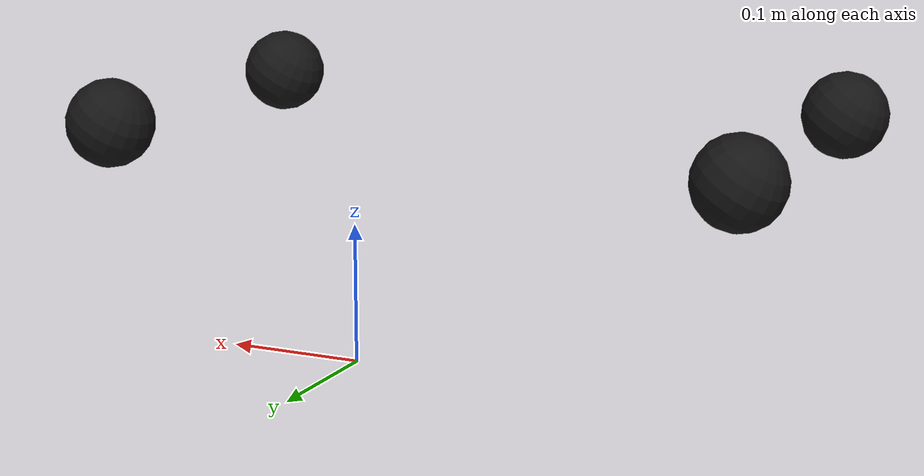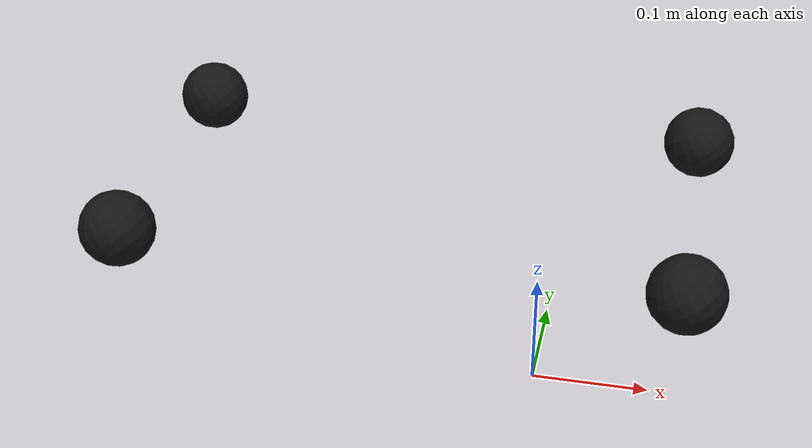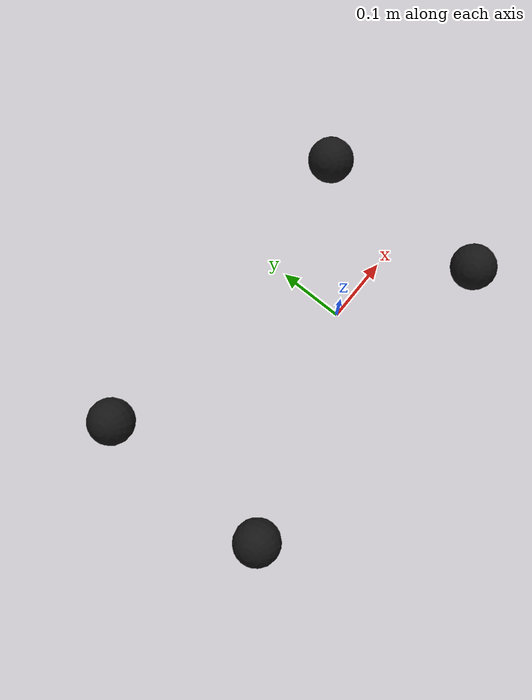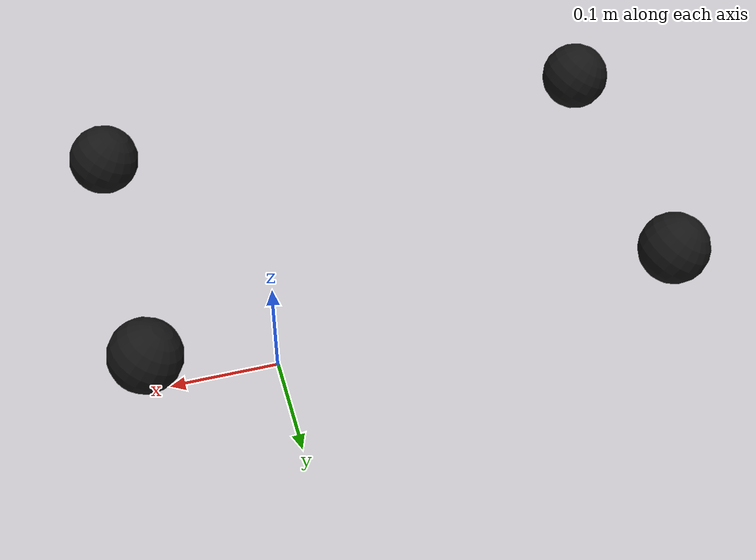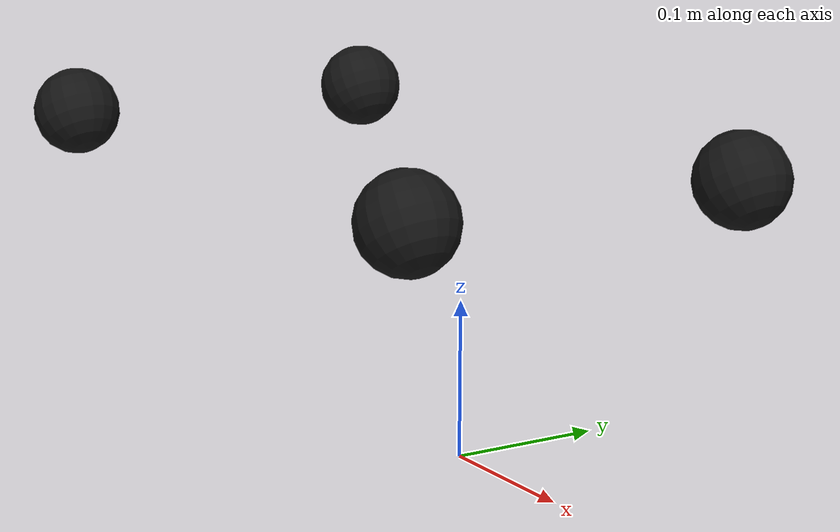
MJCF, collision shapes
<mujoco model="laikago">
  <compiler angle="radian" autolimits="true"/>
  <option timestep="0.002"/>

  <asset>
    <mesh name="chassis_visual" file="meshes/chassis.obj"/>
    <mesh name="hip_left_visual" file="meshes/hip_motor.obj"/>
    <mesh name="hip_right_visual" file="meshes/hip_motor_mirror.obj"/>
    <mesh name="thigh_fl_visual" file="meshes/upper_leg_left.obj"/>
    <mesh name="thigh_fr_visual" file="meshes/upper_leg_mirror.obj"/>
    <mesh name="thigh_rl_visual" file="meshes/upper_leg_left2.obj"/>
    <mesh name="thigh_rr_visual" file="meshes/upper_leg_mirror2.obj"/>
    <mesh name="calf_visual" file="meshes/lower_leg3.obj"/>
  </asset>

  <default>
    <joint damping="1" armature="0.01"/>
    <geom contype="0" conaffinity="0" density="500"/>
    <default class="kinematic">
      <geom group="3" rgba="0 0 0 0"/>
    </default>
    <default class="visual">
      <geom type="mesh" density="0" group="1" rgba="0.82 0.84 0.87 1"/>
    </default>
  </default>

  <worldbody>
    <body name="trunk" pos="0 0 0.48">
      <freejoint name="root"/>
      <geom class="kinematic" type="box" size="0.21 0.08 0.05"/>
      <geom class="visual" mesh="chassis_visual" pos="0.043794 0 0"
            quat="0.5 0.5 0.5 0.5"/>

      <body name="FR_hip" pos="0.242889 -0.0817145 0">
        <joint name="FR_hip_joint" axis="-1 0 0" range="-0.873 1.0472"/>
        <geom class="kinematic" type="capsule" fromto="0 0 0 0 -0.053565 0" size="0.025"/>
        <geom class="visual" mesh="hip_right_visual" quat="0.5 0.5 0.5 0.5"/>
        <body name="FR_thigh" pos="0 -0.053565 0"
              quat="0.944410309632643 0 0.328769169873903 0">
          <joint name="FR_thigh_joint" axis="0 1 0" range="-1.3 3.4" ref="0.67"/>
          <geom class="kinematic" type="capsule" fromto="0 0 0 -0.1422 0.02069 -0.20833" size="0.025"/>
          <geom class="visual" mesh="thigh_fr_visual" quat="0.5 0.5 0.5 0.5"/>
          <body name="FR_calf" pos="-0.1422 0.02069 -0.20833"
                quat="0.810963119505218 0 -0.585097272940462 0">
            <joint name="FR_calf_joint" axis="0 1 0" range="-2.164 0" ref="-1.25"/>
            <geom class="kinematic" type="capsule" fromto="0 0 0 -0.022 0 -0.25" size="0.02"/>
            <geom class="visual" mesh="calf_visual" quat="0 0 0.70710678 0.70710678"/>
            <body name="FR_foot" pos="-0.022 0 -0.25">
              <geom type="sphere" size="0.03" rgba="0.08 0.08 0.08 1"/>
              <site name="FR_foot_site" size="0.01"/>
            </body>
          </body>
        </body>
      </body>

      <body name="FL_hip" pos="0.242889 0.0817145 0">
        <joint name="FL_hip_joint" axis="1 0 0" range="-0.873 1.0472"/>
        <geom class="kinematic" type="capsule" fromto="0 0 0 0 0.055855 0" size="0.025"/>
        <geom class="visual" mesh="hip_left_visual" quat="0.5 0.5 0.5 0.5"/>
        <body name="FL_thigh" pos="0 0.055855 0"
              quat="0.944410309632643 0 0.328769169873903 0">
          <joint name="FL_thigh_joint" axis="0 1 0" range="-1.3 3.4" ref="0.67"/>
          <geom class="kinematic" type="capsule" fromto="0 0 0 -0.1422 -0.02069 -0.20833" size="0.025"/>
          <geom class="visual" mesh="thigh_fl_visual" quat="0.5 0.5 0.5 0.5"/>
          <body name="FL_calf" pos="-0.1422 -0.02069 -0.20833"
                quat="0.810963119505218 0 -0.585097272940462 0">
            <joint name="FL_calf_joint" axis="0 1 0" range="-2.164 0" ref="-1.25"/>
            <geom class="kinematic" type="capsule" fromto="0 0 0 -0.022 0 -0.25" size="0.02"/>
            <geom class="visual" mesh="calf_visual" quat="0 0 0.70710678 0.70710678"/>
            <body name="FL_foot" pos="-0.022 0 -0.25">
              <geom type="sphere" size="0.03" rgba="0.08 0.08 0.08 1"/>
              <site name="FL_foot_site" size="0.01"/>
            </body>
          </body>
        </body>
      </body>

      <body name="RR_hip" pos="-0.194401 -0.0817145 0">
        <joint name="RR_hip_joint" axis="-1 0 0" range="-0.873 1.0472"/>
        <geom class="kinematic" type="capsule" fromto="0 0 0 0 -0.053565 0" size="0.025"/>
        <geom class="visual" mesh="hip_right_visual" quat="0.5 0.5 0.5 0.5"/>
        <body name="RR_thigh" pos="0 -0.053565 0"
              quat="0.944410309632643 0 0.328769169873903 0">
          <joint name="RR_thigh_joint" axis="0 1 0" range="-1.3 3.4" ref="0.67"/>
          <geom class="kinematic" type="capsule" fromto="0 0 0 -0.1422 0.02069 -0.20833" size="0.025"/>
          <geom class="visual" mesh="thigh_rr_visual" quat="0.5 0.5 0.5 0.5"/>
          <body name="RR_calf" pos="-0.1422 0.02069 -0.20833"
                quat="0.810963119505218 0 -0.585097272940462 0">
            <joint name="RR_calf_joint" axis="0 1 0" range="-2.164 0" ref="-1.25"/>
            <geom class="kinematic" type="capsule" fromto="0 0 0 -0.022 0 -0.25" size="0.02"/>
            <geom class="visual" mesh="calf_visual" quat="0 0 0.70710678 0.70710678"/>
            <body name="RR_foot" pos="-0.022 0 -0.25">
              <geom type="sphere" size="0.03" rgba="0.08 0.08 0.08 1"/>
              <site name="RR_foot_site" size="0.01"/>
            </body>
          </body>
        </body>
      </body>

      <body name="RL_hip" pos="-0.194401 0.0817145 0">
        <joint name="RL_hip_joint" axis="1 0 0" range="-0.873 1.0472"/>
        <geom class="kinematic" type="capsule" fromto="0 0 0 0 0.055855 0" size="0.025"/>
        <geom class="visual" mesh="hip_left_visual" quat="0.5 0.5 0.5 0.5"/>
        <body name="RL_thigh" pos="0 0.055855 0"
              quat="0.944410309632643 0 0.328769169873903 0">
          <joint name="RL_thigh_joint" axis="0 1 0" range="-1.3 3.4" ref="0.67"/>
          <geom class="kinematic" type="capsule" fromto="0 0 0 -0.1422 -0.02069 -0.20833" size="0.025"/>
          <geom class="visual" mesh="thigh_rl_visual" quat="0.5 0.5 0.5 0.5"/>
          <body name="RL_calf" pos="-0.1422 -0.02069 -0.20833"
                quat="0.810963119505218 0 -0.585097272940462 0">
            <joint name="RL_calf_joint" axis="0 1 0" range="-2.164 0" ref="-1.25"/>
            <geom class="kinematic" type="capsule" fromto="0 0 0 -0.022 0 -0.25" size="0.02"/>
            <geom class="visual" mesh="calf_visual" quat="0 0 0.70710678 0.70710678"/>
            <body name="RL_foot" pos="-0.022 0 -0.25">
              <geom type="sphere" size="0.03" rgba="0.08 0.08 0.08 1"/>
              <site name="RL_foot_site" size="0.01"/>
            </body>
          </body>
        </body>
      </body>
    </body>
  </worldbody>
</mujoco>
